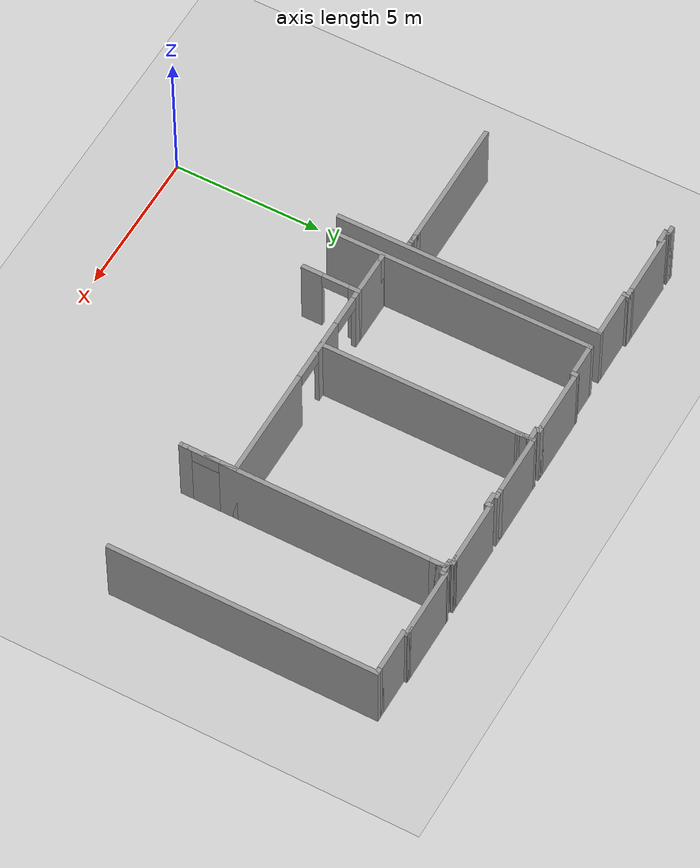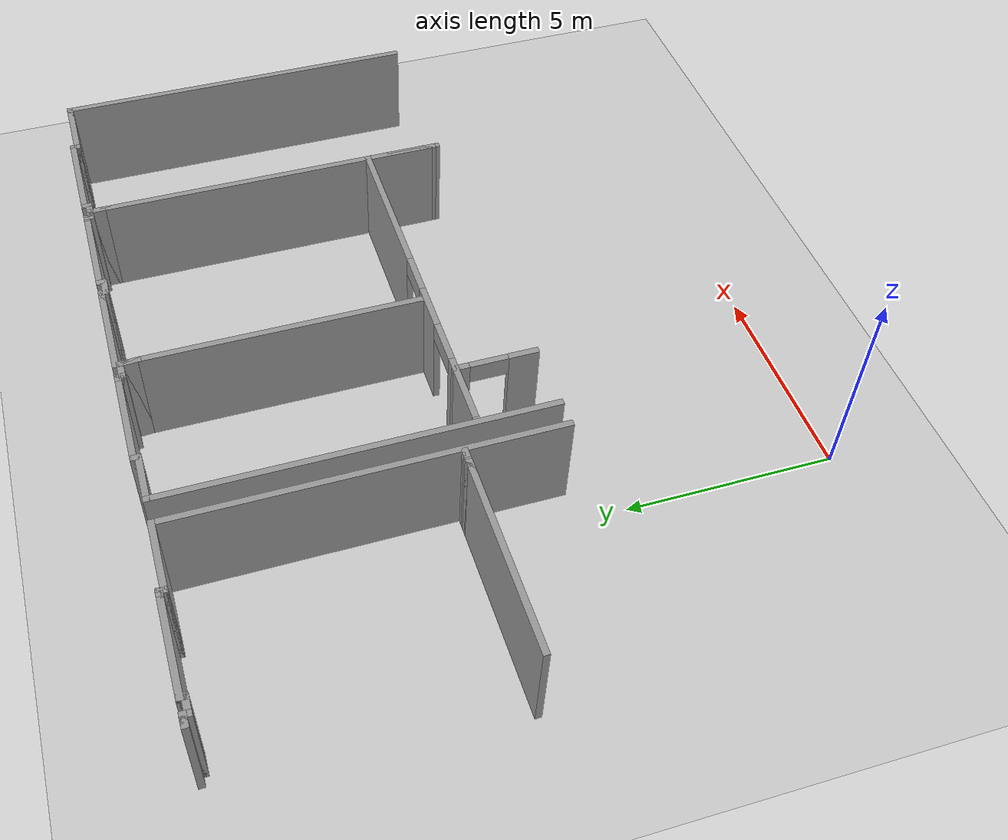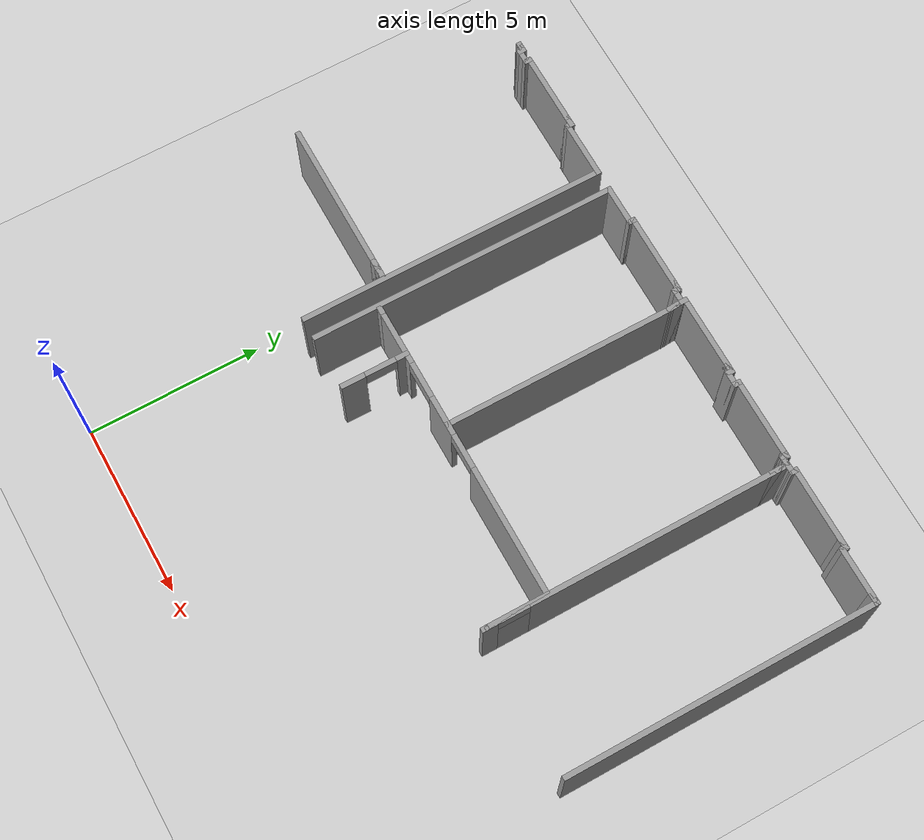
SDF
<sdf version="1.6">
 <world name="default">
  <model name="ground_plane">
   <static>1</static>
   <link name="link">
    <collision name="collision">
     <geometry><plane><normal>0 0 1</normal><size>100 100</size></plane></geometry>
     <surface><friction><ode><mu>100</mu><mu2>50</mu2></ode></friction></surface>
    </collision>
    <visual name="visual">
     <cast_shadows>0</cast_shadows>
     <geometry><plane><normal>0 0 1</normal><size>100 100</size></plane></geometry>
     <material>
      <script><uri>file://media/materials/scripts/gazebo.material</uri><name>Gazebo/Grey</name></script>
     </material>
    </visual>
   </link>
  </model>
  <model name="office_full">
   <pose>-5.89703 3.34021 0 0 -0 0</pose>
   <link name="Wall_329">
    <collision name="Wall_329_Collision">
     <geometry><box><size>0.25 0.15 2.5</size></box></geometry>
     <pose>0 0 1.25 0 -0 0</pose>
    </collision>
    <visual name="Wall_329_Visual">
     <pose>0 0 1.25 0 -0 0</pose>
     <geometry><box><size>0.25 0.15 2.5</size></box></geometry>
     <material>
      <script><uri>file://media/materials/scripts/gazebo.material</uri><name>Gazebo/Grey</name></script>
      <ambient>1 1 1 1</ambient>
     </material>
    </visual>
    <pose>2.35798 11.8397 0 0 -0 0</pose>
   </link>
   <link name="Wall_330">
    <collision name="Wall_330_Collision">
     <geometry><box><size>0.25 0.15 2.5</size></box></geometry>
     <pose>0 0 1.25 0 -0 0</pose>
    </collision>
    <visual name="Wall_330_Visual">
     <pose>0 0 1.25 0 -0 0</pose>
     <geometry><box><size>0.25 0.15 2.5</size></box></geometry>
     <material>
      <script><uri>file://media/materials/scripts/gazebo.material</uri><name>Gazebo/Grey</name></script>
      <ambient>1 1 1 1</ambient>
     </material>
    </visual>
    <pose>2.45798 11.8397 0 0 -0 0</pose>
   </link>
   <link name="Wall_331">
    <collision name="Wall_331_Collision">
     <geometry><box><size>0.25 0.15 2.5</size></box></geometry>
     <pose>0 0 1.25 0 -0 0</pose>
    </collision>
    <visual name="Wall_331_Visual">
     <pose>0 0 1.25 0 -0 0</pose>
     <geometry><box><size>0.25 0.15 2.5</size></box></geometry>
     <material>
      <script><uri>file://media/materials/scripts/gazebo.material</uri><name>Gazebo/Grey</name></script>
      <ambient>1 1 1 1</ambient>
     </material>
    </visual>
    <pose>2.50798 11.7897 0 0 0 -1.5708</pose>
   </link>
   <link name="Wall_332">
    <collision name="Wall_332_Collision">
     <geometry><box><size>0.5 0.15 2.5</size></box></geometry>
     <pose>0 0 1.25 0 -0 0</pose>
    </collision>
    <visual name="Wall_332_Visual">
     <pose>0 0 1.25 0 -0 0</pose>
     <geometry><box><size>0.5 0.15 2.5</size></box></geometry>
     <material>
      <script><uri>file://media/materials/scripts/gazebo.material</uri><name>Gazebo/Grey</name></script>
      <ambient>1 1 1 1</ambient>
     </material>
    </visual>
    <pose>2.68298 11.7397 0 0 -0 0</pose>
   </link>
   <link name="Wall_333">
    <collision name="Wall_333_Collision">
     <geometry><box><size>0.25 0.15 2.5</size></box></geometry>
     <pose>0 0 1.25 0 -0 0</pose>
    </collision>
    <visual name="Wall_333_Visual">
     <pose>0 0 1.25 0 -0 0</pose>
     <geometry><box><size>0.25 0.15 2.5</size></box></geometry>
     <material>
      <script><uri>file://media/materials/scripts/gazebo.material</uri><name>Gazebo/Grey</name></script>
      <ambient>1 1 1 1</ambient>
     </material>
    </visual>
    <pose>2.85798 11.7897 0 0 -0 1.5708</pose>
   </link>
   <link name="Wall_334">
    <collision name="Wall_334_Collision">
     <geometry><box><size>2.25 0.15 2.5</size></box></geometry>
     <pose>0 0 1.25 0 -0 0</pose>
    </collision>
    <visual name="Wall_334_Visual">
     <pose>0 0 1.25 0 -0 0</pose>
     <geometry><box><size>2.25 0.15 2.5</size></box></geometry>
     <material>
      <script><uri>file://media/materials/scripts/gazebo.material</uri><name>Gazebo/Grey</name></script>
      <ambient>1 1 1 1</ambient>
     </material>
    </visual>
    <pose>3.90798 11.8397 0 0 -0 0</pose>
   </link>
   <link name="Wall_335">
    <collision name="Wall_335_Collision">
     <geometry><box><size>0.25 0.15 2.5</size></box></geometry>
     <pose>0 0 1.25 0 -0 0</pose>
    </collision>
    <visual name="Wall_335_Visual">
     <pose>0 0 1.25 0 -0 0</pose>
     <geometry><box><size>0.25 0.15 2.5</size></box></geometry>
     <material>
      <script><uri>file://media/materials/scripts/gazebo.material</uri><name>Gazebo/Grey</name></script>
      <ambient>1 1 1 1</ambient>
     </material>
    </visual>
    <pose>5.00798 11.8397 0 0 -0 0</pose>
   </link>
   <link name="Wall_338">
    <collision name="Wall_338_Collision">
     <geometry><box><size>0.25 0.15 2.5</size></box></geometry>
     <pose>0 0 1.25 0 -0 0</pose>
    </collision>
    <visual name="Wall_338_Visual">
     <pose>0 0 1.25 0 -0 0</pose>
     <geometry><box><size>0.25 0.15 2.5</size></box></geometry>
     <material>
      <script><uri>file://media/materials/scripts/gazebo.material</uri><name>Gazebo/Grey</name></script>
      <ambient>1 1 1 1</ambient>
     </material>
    </visual>
    <pose>5.00798 11.8397 0 0 -0 0</pose>
   </link>
   <link name="Wall_339">
    <collision name="Wall_339_Collision">
     <geometry><box><size>0.25 0.15 2.5</size></box></geometry>
     <pose>0 0 1.25 0 -0 0</pose>
    </collision>
    <visual name="Wall_339_Visual">
     <pose>0 0 1.25 0 -0 0</pose>
     <geometry><box><size>0.25 0.15 2.5</size></box></geometry>
     <material>
      <script><uri>file://media/materials/scripts/gazebo.material</uri><name>Gazebo/Grey</name></script>
      <ambient>1 1 1 1</ambient>
     </material>
    </visual>
    <pose>5.10798 11.8397 0 0 -0 0</pose>
   </link>
   <link name="Wall_340">
    <collision name="Wall_340_Collision">
     <geometry><box><size>0.25 0.15 2.5</size></box></geometry>
     <pose>0 0 1.25 0 -0 0</pose>
    </collision>
    <visual name="Wall_340_Visual">
     <pose>0 0 1.25 0 -0 0</pose>
     <geometry><box><size>0.25 0.15 2.5</size></box></geometry>
     <material>
      <script><uri>file://media/materials/scripts/gazebo.material</uri><name>Gazebo/Grey</name></script>
      <ambient>1 1 1 1</ambient>
     </material>
    </visual>
    <pose>5.15798 11.7897 0 0 0 -1.5708</pose>
   </link>
   <link name="Wall_341">
    <collision name="Wall_341_Collision">
     <geometry><box><size>1.75 0.15 2.5</size></box></geometry>
     <pose>0 0 1.25 0 -0 0</pose>
    </collision>
    <visual name="Wall_341_Visual">
     <pose>0 0 1.25 0 -0 0</pose>
     <geometry><box><size>1.75 0.15 2.5</size></box></geometry>
     <material>
      <script><uri>file://media/materials/scripts/gazebo.material</uri><name>Gazebo/Grey</name></script>
      <ambient>1 1 1 1</ambient>
     </material>
    </visual>
    <pose>5.95798 11.7397 0 0 -0 0</pose>
   </link>
   <link name="Wall_342">
    <collision name="Wall_342_Collision">
     <geometry><box><size>9 0.15 2.5</size></box></geometry>
     <pose>0 0 1.25 0 -0 0</pose>
    </collision>
    <visual name="Wall_342_Visual">
     <pose>0 0 1.25 0 -0 0</pose>
     <geometry><box><size>9 0.15 2.5</size></box></geometry>
     <material>
      <script><uri>file://media/materials/scripts/gazebo.material</uri><name>Gazebo/Grey</name></script>
      <ambient>1 1 1 1</ambient>
     </material>
    </visual>
    <pose>6.75798 7.31471 0 0 0 -1.5708</pose>
   </link>
   <link name="Wall_389">
    <collision name="Wall_389_Collision">
     <geometry><box><size>4.5 0.15 2.5</size></box></geometry>
     <pose>0 0 1.25 0 -0 0</pose>
    </collision>
    <visual name="Wall_389_Visual">
     <pose>0 0 1.25 0 -0 0</pose>
     <geometry><box><size>4.5 0.15 2.5</size></box></geometry>
     <material>
      <script><uri>file://media/materials/scripts/gazebo.material</uri><name>Gazebo/Grey</name></script>
      <ambient>1 1 1 1</ambient>
     </material>
    </visual>
    <pose>4.02068 5.23121 0 0 -0 0</pose>
   </link>
   <link name="Wall_390">
    <collision name="Wall_390_Collision">
     <geometry><box><size>0.25 0.15 2.5</size></box></geometry>
     <pose>0 0 1.25 0 -0 0</pose>
    </collision>
    <visual name="Wall_390_Visual">
     <pose>0 0 1.25 0 -0 0</pose>
     <geometry><box><size>0.25 0.15 2.5</size></box></geometry>
     <material>
      <script><uri>file://media/materials/scripts/gazebo.material</uri><name>Gazebo/Grey</name></script>
      <ambient>1 1 1 1</ambient>
     </material>
    </visual>
    <pose>6.24568 5.23121 0 0 -0 0</pose>
   </link>
   <link name="Wall_391">
    <collision name="Wall_391_Collision">
     <geometry><box><size>0.25 0.15 2.5</size></box></geometry>
     <pose>0 0 1.25 0 -0 0</pose>
    </collision>
    <visual name="Wall_391_Visual">
     <pose>0 0 1.25 0 -0 0</pose>
     <geometry><box><size>0.25 0.15 2.5</size></box></geometry>
     <material>
      <script><uri>file://media/materials/scripts/gazebo.material</uri><name>Gazebo/Grey</name></script>
      <ambient>1 1 1 1</ambient>
     </material>
    </visual>
    <pose>6.34568 5.23121 0 0 -0 0</pose>
   </link>
   <link name="Wall_392">
    <collision name="Wall_392_Collision">
     <geometry><box><size>0.25 0.15 2.5</size></box></geometry>
     <pose>0 0 1.25 0 -0 0</pose>
    </collision>
    <visual name="Wall_392_Visual">
     <pose>0 0 1.25 0 -0 0</pose>
     <geometry><box><size>0.25 0.15 2.5</size></box></geometry>
     <material>
      <script><uri>file://media/materials/scripts/gazebo.material</uri><name>Gazebo/Grey</name></script>
      <ambient>1 1 1 1</ambient>
     </material>
    </visual>
    <pose>6.44568 5.23121 0 0 -0 0</pose>
   </link>
   <link name="Wall_393">
    <collision name="Wall_393_Collision">
     <geometry><box><size>0.25 0.15 2.5</size></box></geometry>
     <pose>0 0 1.25 0 -0 0</pose>
    </collision>
    <visual name="Wall_393_Visual">
     <pose>0 0 1.25 0 -0 0</pose>
     <geometry><box><size>0.25 0.15 2.5</size></box></geometry>
     <material>
      <script><uri>file://media/materials/scripts/gazebo.material</uri><name>Gazebo/Grey</name></script>
      <ambient>1 1 1 1</ambient>
     </material>
    </visual>
    <pose>6.54568 5.23121 0 0 -0 0</pose>
   </link>
   <link name="Wall_394">
    <collision name="Wall_394_Collision">
     <geometry><box><size>0.25 0.15 2.5</size></box></geometry>
     <pose>0 0 1.25 0 -0 0</pose>
    </collision>
    <visual name="Wall_394_Visual">
     <pose>0 0 1.25 0 -0 0</pose>
     <geometry><box><size>0.25 0.15 2.5</size></box></geometry>
     <material>
      <script><uri>file://media/materials/scripts/gazebo.material</uri><name>Gazebo/Grey</name></script>
      <ambient>1 1 1 1</ambient>
     </material>
    </visual>
    <pose>6.64568 5.23121 0 0 -0 0</pose>
   </link>
   <link name="Wall_401">
    <collision name="Wall_401_Collision">
     <geometry><box><size>9 0.15 2.5</size></box></geometry>
     <pose>0 0 1.25 0 -0 0</pose>
    </collision>
    <visual name="Wall_401_Visual">
     <pose>0 0 1.25 0 -0 0</pose>
     <geometry><box><size>9 0.15 2.5</size></box></geometry>
     <material>
      <script><uri>file://media/materials/scripts/gazebo.material</uri><name>Gazebo/Grey</name></script>
      <ambient>1 1 1 1</ambient>
     </material>
    </visual>
    <pose>7.35798 7.31471 0 0 -0 1.5708</pose>
   </link>
   <link name="Wall_402">
    <collision name="Wall_402_Collision">
     <geometry><box><size>1.25 0.15 2.5</size></box></geometry>
     <pose>0 0 1.25 0 -0 0</pose>
    </collision>
    <visual name="Wall_402_Visual">
     <pose>0 0 1.25 0 -0 0</pose>
     <geometry><box><size>1.25 0.15 2.5</size></box></geometry>
     <material>
      <script><uri>file://media/materials/scripts/gazebo.material</uri><name>Gazebo/Grey</name></script>
      <ambient>1 1 1 1</ambient>
     </material>
    </visual>
    <pose>7.90798 11.7397 0 0 -0 0</pose>
   </link>
   <link name="Wall_403">
    <collision name="Wall_403_Collision">
     <geometry><box><size>0.25 0.15 2.5</size></box></geometry>
     <pose>0 0 1.25 0 -0 0</pose>
    </collision>
    <visual name="Wall_403_Visual">
     <pose>0 0 1.25 0 -0 0</pose>
     <geometry><box><size>0.25 0.15 2.5</size></box></geometry>
     <material>
      <script><uri>file://media/materials/scripts/gazebo.material</uri><name>Gazebo/Grey</name></script>
      <ambient>1 1 1 1</ambient>
     </material>
    </visual>
    <pose>8.45798 11.7897 0 0 -0 1.5708</pose>
   </link>
   <link name="Wall_404">
    <collision name="Wall_404_Collision">
     <geometry><box><size>2.25 0.15 2.5</size></box></geometry>
     <pose>0 0 1.25 0 -0 0</pose>
    </collision>
    <visual name="Wall_404_Visual">
     <pose>0 0 1.25 0 -0 0</pose>
     <geometry><box><size>2.25 0.15 2.5</size></box></geometry>
     <material>
      <script><uri>file://media/materials/scripts/gazebo.material</uri><name>Gazebo/Grey</name></script>
      <ambient>1 1 1 1</ambient>
     </material>
    </visual>
    <pose>9.50798 11.8397 0 0 -0 0</pose>
   </link>
   <link name="Wall_405">
    <collision name="Wall_405_Collision">
     <geometry><box><size>0.25 0.15 2.5</size></box></geometry>
     <pose>0 0 1.25 0 -0 0</pose>
    </collision>
    <visual name="Wall_405_Visual">
     <pose>0 0 1.25 0 -0 0</pose>
     <geometry><box><size>0.25 0.15 2.5</size></box></geometry>
     <material>
      <script><uri>file://media/materials/scripts/gazebo.material</uri><name>Gazebo/Grey</name></script>
      <ambient>1 1 1 1</ambient>
     </material>
    </visual>
    <pose>10.608 11.8397 0 0 -0 0</pose>
   </link>
   <link name="Wall_406">
    <collision name="Wall_406_Collision">
     <geometry><box><size>0.25 0.15 2.5</size></box></geometry>
     <pose>0 0 1.25 0 -0 0</pose>
    </collision>
    <visual name="Wall_406_Visual">
     <pose>0 0 1.25 0 -0 0</pose>
     <geometry><box><size>0.25 0.15 2.5</size></box></geometry>
     <material>
      <script><uri>file://media/materials/scripts/gazebo.material</uri><name>Gazebo/Grey</name></script>
      <ambient>1 1 1 1</ambient>
     </material>
    </visual>
    <pose>10.708 11.8397 0 0 -0 0</pose>
   </link>
   <link name="Wall_407">
    <collision name="Wall_407_Collision">
     <geometry><box><size>0.25 0.15 2.5</size></box></geometry>
     <pose>0 0 1.25 0 -0 0</pose>
    </collision>
    <visual name="Wall_407_Visual">
     <pose>0 0 1.25 0 -0 0</pose>
     <geometry><box><size>0.25 0.15 2.5</size></box></geometry>
     <material>
      <script><uri>file://media/materials/scripts/gazebo.material</uri><name>Gazebo/Grey</name></script>
      <ambient>1 1 1 1</ambient>
     </material>
    </visual>
    <pose>10.758 11.7897 0 0 0 -1.5708</pose>
   </link>
   <link name="Wall_411">
    <collision name="Wall_411_Collision">
     <geometry><box><size>0.25 0.15 2.5</size></box></geometry>
     <pose>0 0 1.25 0 -0 0</pose>
    </collision>
    <visual name="Wall_411_Visual">
     <pose>0 0 1.25 0 -0 0</pose>
     <geometry><box><size>0.25 0.15 2.5</size></box></geometry>
     <material>
      <script><uri>file://media/materials/scripts/gazebo.material</uri><name>Gazebo/Grey</name></script>
      <ambient>1 1 1 1</ambient>
     </material>
    </visual>
    <pose>13.258 11.8397 0 0 -0 0</pose>
   </link>
   <link name="Wall_412">
    <collision name="Wall_412_Collision">
     <geometry><box><size>0.25 0.15 2.5</size></box></geometry>
     <pose>0 0 1.25 0 -0 0</pose>
    </collision>
    <visual name="Wall_412_Visual">
     <pose>0 0 1.25 0 -0 0</pose>
     <geometry><box><size>0.25 0.15 2.5</size></box></geometry>
     <material>
      <script><uri>file://media/materials/scripts/gazebo.material</uri><name>Gazebo/Grey</name></script>
      <ambient>1 1 1 1</ambient>
     </material>
    </visual>
    <pose>13.358 11.8397 0 0 -0 0</pose>
   </link>
   <link name="Wall_413">
    <collision name="Wall_413_Collision">
     <geometry><box><size>0.25 0.15 2.5</size></box></geometry>
     <pose>0 0 1.25 0 -0 0</pose>
    </collision>
    <visual name="Wall_413_Visual">
     <pose>0 0 1.25 0 -0 0</pose>
     <geometry><box><size>0.25 0.15 2.5</size></box></geometry>
     <material>
      <script><uri>file://media/materials/scripts/gazebo.material</uri><name>Gazebo/Grey</name></script>
      <ambient>1 1 1 1</ambient>
     </material>
    </visual>
    <pose>13.408 11.7897 0 0 0 -1.5708</pose>
   </link>
   <link name="Wall_414">
    <collision name="Wall_414_Collision">
     <geometry><box><size>0.5 0.15 2.5</size></box></geometry>
     <pose>0 0 1.25 0 -0 0</pose>
    </collision>
    <visual name="Wall_414_Visual">
     <pose>0 0 1.25 0 -0 0</pose>
     <geometry><box><size>0.5 0.15 2.5</size></box></geometry>
     <material>
      <script><uri>file://media/materials/scripts/gazebo.material</uri><name>Gazebo/Grey</name></script>
      <ambient>1 1 1 1</ambient>
     </material>
    </visual>
    <pose>13.583 11.7397 0 0 -0 0</pose>
   </link>
   <link name="Wall_415">
    <collision name="Wall_415_Collision">
     <geometry><box><size>0.25 0.15 2.5</size></box></geometry>
     <pose>0 0 1.25 0 -0 0</pose>
    </collision>
    <visual name="Wall_415_Visual">
     <pose>0 0 1.25 0 -0 0</pose>
     <geometry><box><size>0.25 0.15 2.5</size></box></geometry>
     <material>
      <script><uri>file://media/materials/scripts/gazebo.material</uri><name>Gazebo/Grey</name></script>
      <ambient>1 1 1 1</ambient>
     </material>
    </visual>
    <pose>13.758 11.7897 0 0 -0 1.5708</pose>
   </link>
   <link name="Wall_416">
    <collision name="Wall_416_Collision">
     <geometry><box><size>2.25 0.15 2.5</size></box></geometry>
     <pose>0 0 1.25 0 -0 0</pose>
    </collision>
    <visual name="Wall_416_Visual">
     <pose>0 0 1.25 0 -0 0</pose>
     <geometry><box><size>2.25 0.15 2.5</size></box></geometry>
     <material>
      <script><uri>file://media/materials/scripts/gazebo.material</uri><name>Gazebo/Grey</name></script>
      <ambient>1 1 1 1</ambient>
     </material>
    </visual>
    <pose>14.808 11.8397 0 0 -0 0</pose>
   </link>
   <link name="Wall_417">
    <collision name="Wall_417_Collision">
     <geometry><box><size>0.25 0.15 2.5</size></box></geometry>
     <pose>0 0 1.25 0 -0 0</pose>
    </collision>
    <visual name="Wall_417_Visual">
     <pose>0 0 1.25 0 -0 0</pose>
     <geometry><box><size>0.25 0.15 2.5</size></box></geometry>
     <material>
      <script><uri>file://media/materials/scripts/gazebo.material</uri><name>Gazebo/Grey</name></script>
      <ambient>1 1 1 1</ambient>
     </material>
    </visual>
    <pose>15.908 11.8397 0 0 -0 0</pose>
   </link>
   <link name="Wall_418">
    <collision name="Wall_418_Collision">
     <geometry><box><size>0.25 0.15 2.5</size></box></geometry>
     <pose>0 0 1.25 0 -0 0</pose>
    </collision>
    <visual name="Wall_418_Visual">
     <pose>0 0 1.25 0 -0 0</pose>
     <geometry><box><size>0.25 0.15 2.5</size></box></geometry>
     <material>
      <script><uri>file://media/materials/scripts/gazebo.material</uri><name>Gazebo/Grey</name></script>
      <ambient>1 1 1 1</ambient>
     </material>
    </visual>
    <pose>16.008 11.8397 0 0 -0 0</pose>
   </link>
   <link name="Wall_419">
    <collision name="Wall_419_Collision">
     <geometry><box><size>0.25 0.15 2.5</size></box></geometry>
     <pose>0 0 1.25 0 -0 0</pose>
    </collision>
    <visual name="Wall_419_Visual">
     <pose>0 0 1.25 0 -0 0</pose>
     <geometry><box><size>0.25 0.15 2.5</size></box></geometry>
     <material>
      <script><uri>file://media/materials/scripts/gazebo.material</uri><name>Gazebo/Grey</name></script>
      <ambient>1 1 1 1</ambient>
     </material>
    </visual>
    <pose>16.0568 11.7897 0 0 0 -1.59537</pose>
   </link>
   <link name="Wall_424">
    <collision name="Wall_424_Collision">
     <geometry><box><size>0.25 0.15 2.5</size></box></geometry>
     <pose>0 0 1.25 0 -0 0</pose>
    </collision>
    <visual name="Wall_424_Visual">
     <pose>0 0 1.25 0 -0 0</pose>
     <geometry><box><size>0.25 0.15 2.5</size></box></geometry>
     <material>
      <script><uri>file://media/materials/scripts/gazebo.material</uri><name>Gazebo/Grey</name></script>
      <ambient>1 1 1 1</ambient>
     </material>
    </visual>
    <pose>18.658 11.8397 0 0 -0 0</pose>
   </link>
   <link name="Wall_427">
    <collision name="Wall_427_Collision">
     <geometry><box><size>0.25 0.15 2.5</size></box></geometry>
     <pose>0 0 1.25 0 -0 0</pose>
    </collision>
    <visual name="Wall_427_Visual">
     <pose>0 0 1.25 0 -0 0</pose>
     <geometry><box><size>0.25 0.15 2.5</size></box></geometry>
     <material>
      <script><uri>file://media/materials/scripts/gazebo.material</uri><name>Gazebo/Grey</name></script>
      <ambient>1 1 1 1</ambient>
     </material>
    </visual>
    <pose>18.658 11.8397 0 0 -0 0</pose>
   </link>
   <link name="Wall_428">
    <collision name="Wall_428_Collision">
     <geometry><box><size>0.25 0.15 2.5</size></box></geometry>
     <pose>0 0 1.25 0 -0 0</pose>
    </collision>
    <visual name="Wall_428_Visual">
     <pose>0 0 1.25 0 -0 0</pose>
     <geometry><box><size>0.25 0.15 2.5</size></box></geometry>
     <material>
      <script><uri>file://media/materials/scripts/gazebo.material</uri><name>Gazebo/Grey</name></script>
      <ambient>1 1 1 1</ambient>
     </material>
    </visual>
    <pose>18.758 11.8397 0 0 -0 0</pose>
   </link>
   <link name="Wall_429">
    <collision name="Wall_429_Collision">
     <geometry><box><size>0.25 0.15 2.5</size></box></geometry>
     <pose>0 0 1.25 0 -0 0</pose>
    </collision>
    <visual name="Wall_429_Visual">
     <pose>0 0 1.25 0 -0 0</pose>
     <geometry><box><size>0.25 0.15 2.5</size></box></geometry>
     <material>
      <script><uri>file://media/materials/scripts/gazebo.material</uri><name>Gazebo/Grey</name></script>
      <ambient>1 1 1 1</ambient>
     </material>
    </visual>
    <pose>18.808 11.7897 0 0 0 -1.5708</pose>
   </link>
   <link name="Wall_430">
    <collision name="Wall_430_Collision">
     <geometry><box><size>1.5 0.15 2.5</size></box></geometry>
     <pose>0 0 1.25 0 -0 0</pose>
    </collision>
    <visual name="Wall_430_Visual">
     <pose>0 0 1.25 0 -0 0</pose>
     <geometry><box><size>1.5 0.15 2.5</size></box></geometry>
     <material>
      <script><uri>file://media/materials/scripts/gazebo.material</uri><name>Gazebo/Grey</name></script>
      <ambient>1 1 1 1</ambient>
     </material>
    </visual>
    <pose>19.483 11.7397 0 0 -0 0</pose>
   </link>
   <link name="Wall_431">
    <collision name="Wall_431_Collision">
     <geometry><box><size>0.25 0.15 2.5</size></box></geometry>
     <pose>0 0 1.25 0 -0 0</pose>
    </collision>
    <visual name="Wall_431_Visual">
     <pose>0 0 1.25 0 -0 0</pose>
     <geometry><box><size>0.25 0.15 2.5</size></box></geometry>
     <material>
      <script><uri>file://media/materials/scripts/gazebo.material</uri><name>Gazebo/Grey</name></script>
      <ambient>1 1 1 1</ambient>
     </material>
    </visual>
    <pose>20.208 11.7397 0 0 -0 0</pose>
   </link>
   <link name="Wall_432">
    <collision name="Wall_432_Collision">
     <geometry><box><size>0.25 0.15 2.5</size></box></geometry>
     <pose>0 0 1.25 0 -0 0</pose>
    </collision>
    <visual name="Wall_432_Visual">
     <pose>0 0 1.25 0 -0 0</pose>
     <geometry><box><size>0.25 0.15 2.5</size></box></geometry>
     <material>
      <script><uri>file://media/materials/scripts/gazebo.material</uri><name>Gazebo/Grey</name></script>
      <ambient>1 1 1 1</ambient>
     </material>
    </visual>
    <pose>20.308 11.7397 0 0 -0 0</pose>
   </link>
   <link name="Wall_433">
    <collision name="Wall_433_Collision">
     <geometry><box><size>9 0.15 2.5</size></box></geometry>
     <pose>0 0 1.25 0 -0 0</pose>
    </collision>
    <visual name="Wall_433_Visual">
     <pose>0 0 1.25 0 -0 0</pose>
     <geometry><box><size>9 0.15 2.5</size></box></geometry>
     <material>
      <script><uri>file://media/materials/scripts/gazebo.material</uri><name>Gazebo/Grey</name></script>
      <ambient>1 1 1 1</ambient>
     </material>
    </visual>
    <pose>20.358 7.31471 0 0 0 -1.5708</pose>
   </link>
   <link name="Wall_458">
    <pose>8.90798 3.81471 0 0 -0 1.5708</pose>
    <visual name="Wall_458_Visual_0">
     <pose>-0.644234 0 1.25 0 -0 0</pose>
     <geometry><box><size>0.711531 0.15 2.5</size></box></geometry>
     <material>
      <script><uri>file://media/materials/scripts/gazebo.material</uri><name>Gazebo/Grey</name></script>
      <ambient>1 1 1 1</ambient>
     </material>
    </visual>
    <collision name="Wall_458_Collision_0">
     <geometry><box><size>0.711531 0.15 2.5</size></box></geometry>
     <pose>-0.644234 0 1.25 0 -0 0</pose>
    </collision>
    <visual name="Wall_458_Visual_1">
     <pose>0.805766 0 1.25 0 -0 0</pose>
     <geometry><box><size>0.388469 0.15 2.5</size></box></geometry>
     <material>
      <script><uri>file://media/materials/scripts/gazebo.material</uri><name>Gazebo/Grey</name></script>
      <ambient>1 1 1 1</ambient>
     </material>
    </visual>
    <collision name="Wall_458_Collision_1">
     <geometry><box><size>0.388469 0.15 2.5</size></box></geometry>
     <pose>0.805766 0 1.25 0 -0 0</pose>
    </collision>
    <visual name="Wall_458_Visual_2">
     <pose>0.161531 0 2.25 0 -0 0</pose>
     <geometry><box><size>0.9 0.15 0.5</size></box></geometry>
     <material>
      <script><uri>file://media/materials/scripts/gazebo.material</uri><name>Gazebo/Grey</name></script>
      <ambient>1 1 1 1</ambient>
     </material>
    </visual>
    <collision name="Wall_458_Collision_2">
     <geometry><box><size>0.9 0.15 0.5</size></box></geometry>
     <pose>0.161531 0 2.25 0 -0 0</pose>
    </collision>
   </link>
   <link name="Wall_459">
    <collision name="Wall_459_Collision">
     <geometry><box><size>1.5 0.15 2.5</size></box></geometry>
     <pose>0 0 1.25 0 -0 0</pose>
    </collision>
    <visual name="Wall_459_Visual">
     <pose>0 0 1.25 0 -0 0</pose>
     <geometry><box><size>1.5 0.15 2.5</size></box></geometry>
     <material>
      <script><uri>file://media/materials/scripts/gazebo.material</uri><name>Gazebo/Grey</name></script>
      <ambient>1 1 1 1</ambient>
     </material>
    </visual>
    <pose>8.23298 4.73971 0 0 -0 3.14159</pose>
   </link>
   <link name="Wall_460">
    <collision name="Wall_460_Collision">
     <geometry><box><size>0.25 0.15 2.5</size></box></geometry>
     <pose>0 0 1.25 0 -0 0</pose>
    </collision>
    <visual name="Wall_460_Visual">
     <pose>0 0 1.25 0 -0 0</pose>
     <geometry><box><size>0.25 0.15 2.5</size></box></geometry>
     <material>
      <script><uri>file://media/materials/scripts/gazebo.material</uri><name>Gazebo/Grey</name></script>
      <ambient>1 1 1 1</ambient>
     </material>
    </visual>
    <pose>7.50798 4.73971 0 0 -0 3.14159</pose>
   </link>
   <link name="Wall_465">
    <pose>12.583 4.73971 0 0 -0 0</pose>
    <visual name="Wall_465_Visual_0">
     <pose>-3.56496 0 1.25 0 -0 0</pose>
     <geometry><box><size>0.370079 0.15 2.5</size></box></geometry>
     <material>
      <script><uri>file://media/materials/scripts/gazebo.material</uri><name>Gazebo/Grey</name></script>
      <ambient>1 1 1 1</ambient>
     </material>
    </visual>
    <collision name="Wall_465_Collision_0">
     <geometry><box><size>0.370079 0.15 2.5</size></box></geometry>
     <pose>-3.56496 0 1.25 0 -0 0</pose>
    </collision>
    <visual name="Wall_465_Visual_1">
     <pose>-1.72009 0 1.25 0 -0 0</pose>
     <geometry><box><size>1.17775 0.15 2.5</size></box></geometry>
     <material>
      <script><uri>file://media/materials/scripts/gazebo.material</uri><name>Gazebo/Grey</name></script>
      <ambient>1 1 1 1</ambient>
     </material>
    </visual>
    <collision name="Wall_465_Collision_1">
     <geometry><box><size>1.17775 0.15 2.5</size></box></geometry>
     <pose>-1.72009 0 1.25 0 -0 0</pose>
    </collision>
    <visual name="Wall_465_Visual_2">
     <pose>1.81857 0 1.25 0 -0 0</pose>
     <geometry><box><size>3.86286 0.15 2.5</size></box></geometry>
     <material>
      <script><uri>file://media/materials/scripts/gazebo.material</uri><name>Gazebo/Grey</name></script>
      <ambient>1 1 1 1</ambient>
     </material>
    </visual>
    <collision name="Wall_465_Collision_2">
     <geometry><box><size>3.86286 0.15 2.5</size></box></geometry>
     <pose>1.81857 0 1.25 0 -0 0</pose>
    </collision>
    <visual name="Wall_465_Visual_3">
     <pose>-2.84444 0 2.25 0 -0 0</pose>
     <geometry><box><size>1.07095 0.15 0.5</size></box></geometry>
     <material>
      <script><uri>file://media/materials/scripts/gazebo.material</uri><name>Gazebo/Grey</name></script>
      <ambient>1 1 1 1</ambient>
     </material>
    </visual>
    <collision name="Wall_465_Collision_3">
     <geometry><box><size>1.07095 0.15 0.5</size></box></geometry>
     <pose>-2.84444 0 2.25 0 -0 0</pose>
    </collision>
    <visual name="Wall_465_Visual_4">
     <pose>-0.62204 0 2.25 0 -0 0</pose>
     <geometry><box><size>1.01835 0.15 0.5</size></box></geometry>
     <material>
      <script><uri>file://media/materials/scripts/gazebo.material</uri><name>Gazebo/Grey</name></script>
      <ambient>1 1 1 1</ambient>
     </material>
    </visual>
    <collision name="Wall_465_Collision_4">
     <geometry><box><size>1.01835 0.15 0.5</size></box></geometry>
     <pose>-0.62204 0 2.25 0 -0 0</pose>
    </collision>
   </link>
   <link name="Wall_466">
    <collision name="Wall_466_Collision">
     <geometry><box><size>1.75 0.15 2.5</size></box></geometry>
     <pose>0 0 1.25 0 -0 0</pose>
    </collision>
    <visual name="Wall_466_Visual">
     <pose>0 0 1.25 0 -0 0</pose>
     <geometry><box><size>1.75 0.15 2.5</size></box></geometry>
     <material>
      <script><uri>file://media/materials/scripts/gazebo.material</uri><name>Gazebo/Grey</name></script>
      <ambient>1 1 1 1</ambient>
     </material>
    </visual>
    <pose>16.258 3.93971 0 0 0 -1.5708</pose>
   </link>
   <link name="Wall_467">
    <collision name="Wall_467_Collision">
     <geometry><box><size>0.25 0.15 2.5</size></box></geometry>
     <pose>0 0 1.25 0 -0 0</pose>
    </collision>
    <visual name="Wall_467_Visual">
     <pose>0 0 1.25 0 -0 0</pose>
     <geometry><box><size>0.25 0.15 2.5</size></box></geometry>
     <material>
      <script><uri>file://media/materials/scripts/gazebo.material</uri><name>Gazebo/Grey</name></script>
      <ambient>1 1 1 1</ambient>
     </material>
    </visual>
    <pose>16.258 3.08971 0 0 0 -1.5708</pose>
   </link>
   <link name="Wall_469">
    <pose>16.258 7.11471 0 0 -0 1.5708</pose>
    <visual name="Wall_469_Visual_0">
     <pose>-4.0295 0 1.25 0 -0 0</pose>
     <geometry><box><size>0.441005 0.15 2.5</size></box></geometry>
     <material>
      <script><uri>file://media/materials/scripts/gazebo.material</uri><name>Gazebo/Grey</name></script>
      <ambient>1 1 1 1</ambient>
     </material>
    </visual>
    <collision name="Wall_469_Collision_0">
     <geometry><box><size>0.441005 0.15 2.5</size></box></geometry>
     <pose>-4.0295 0 1.25 0 -0 0</pose>
    </collision>
    <visual name="Wall_469_Visual_1">
     <pose>0.678107 0 1.25 0 -0 0</pose>
     <geometry><box><size>7.14379 0.15 2.5</size></box></geometry>
     <material>
      <script><uri>file://media/materials/scripts/gazebo.material</uri><name>Gazebo/Grey</name></script>
      <ambient>1 1 1 1</ambient>
     </material>
    </visual>
    <collision name="Wall_469_Collision_1">
     <geometry><box><size>7.14379 0.15 2.5</size></box></geometry>
     <pose>0.678107 0 1.25 0 -0 0</pose>
    </collision>
    <visual name="Wall_469_Visual_2">
     <pose>-3.35139 0 2.25 0 -0 0</pose>
     <geometry><box><size>0.915209 0.15 0.5</size></box></geometry>
     <material>
      <script><uri>file://media/materials/scripts/gazebo.material</uri><name>Gazebo/Grey</name></script>
      <ambient>1 1 1 1</ambient>
     </material>
    </visual>
    <collision name="Wall_469_Collision_2">
     <geometry><box><size>0.915209 0.15 0.5</size></box></geometry>
     <pose>-3.35139 0 2.25 0 -0 0</pose>
    </collision>
   </link>
   <link name="Wall_472">
    <collision name="Wall_472_Collision">
     <geometry><box><size>0.25 0.15 2.5</size></box></geometry>
     <pose>0 0 1.25 0 -0 0</pose>
    </collision>
    <visual name="Wall_472_Visual">
     <pose>0 0 1.25 0 -0 0</pose>
     <geometry><box><size>0.25 0.15 2.5</size></box></geometry>
     <material>
      <script><uri>file://media/materials/scripts/gazebo.material</uri><name>Gazebo/Grey</name></script>
      <ambient>1 1 1 1</ambient>
     </material>
    </visual>
    <pose>16.058 11.7897 0 0 0 -1.5708</pose>
   </link>
   <link name="Wall_474">
    <collision name="Wall_474_Collision">
     <geometry><box><size>0.25 0.15 2.5</size></box></geometry>
     <pose>0 0 1.25 0 -0 0</pose>
    </collision>
    <visual name="Wall_474_Visual">
     <pose>0 0 1.25 0 -0 0</pose>
     <geometry><box><size>0.25 0.15 2.5</size></box></geometry>
     <material>
      <script><uri>file://media/materials/scripts/gazebo.material</uri><name>Gazebo/Grey</name></script>
      <ambient>1 1 1 1</ambient>
     </material>
    </visual>
    <pose>16.058 11.7897 0 0 0 -1.5708</pose>
   </link>
   <link name="Wall_475">
    <collision name="Wall_475_Collision">
     <geometry><box><size>0.25 0.15 2.5</size></box></geometry>
     <pose>0 0 1.25 0 -0 0</pose>
    </collision>
    <visual name="Wall_475_Visual">
     <pose>0 0 1.25 0 -0 0</pose>
     <geometry><box><size>0.25 0.15 2.5</size></box></geometry>
     <material>
      <script><uri>file://media/materials/scripts/gazebo.material</uri><name>Gazebo/Grey</name></script>
      <ambient>1 1 1 1</ambient>
     </material>
    </visual>
    <pose>16.108 11.7397 0 0 -0 0</pose>
   </link>
   <link name="Wall_476">
    <collision name="Wall_476_Collision">
     <geometry><box><size>0.25 0.15 2.5</size></box></geometry>
     <pose>0 0 1.25 0 -0 0</pose>
    </collision>
    <visual name="Wall_476_Visual">
     <pose>0 0 1.25 0 -0 0</pose>
     <geometry><box><size>0.25 0.15 2.5</size></box></geometry>
     <material>
      <script><uri>file://media/materials/scripts/gazebo.material</uri><name>Gazebo/Grey</name></script>
      <ambient>1 1 1 1</ambient>
     </material>
    </visual>
    <pose>16.208 11.7397 0 0 -0 0</pose>
   </link>
   <link name="Wall_477">
    <collision name="Wall_477_Collision">
     <geometry><box><size>0.6 0.15 2.5</size></box></geometry>
     <pose>0 0 1.25 0 -0 0</pose>
    </collision>
    <visual name="Wall_477_Visual">
     <pose>0 0 1.25 0 -0 0</pose>
     <geometry><box><size>0.6 0.15 2.5</size></box></geometry>
     <material>
      <script><uri>file://media/materials/scripts/gazebo.material</uri><name>Gazebo/Grey</name></script>
      <ambient>1 1 1 1</ambient>
     </material>
    </visual>
    <pose>16.258 11.5147 0 0 0 -1.5708</pose>
   </link>
   <link name="Wall_478">
    <collision name="Wall_478_Collision">
     <geometry><box><size>0.6 0.15 2.5</size></box></geometry>
     <pose>0 0 1.25 0 -0 0</pose>
    </collision>
    <visual name="Wall_478_Visual">
     <pose>0 0 1.25 0 -0 0</pose>
     <geometry><box><size>0.6 0.15 2.5</size></box></geometry>
     <material>
      <script><uri>file://media/materials/scripts/gazebo.material</uri><name>Gazebo/Grey</name></script>
      <ambient>1 1 1 1</ambient>
     </material>
    </visual>
    <pose>16.258 11.5147 0 0 -0 1.5708</pose>
   </link>
   <link name="Wall_479">
    <collision name="Wall_479_Collision">
     <geometry><box><size>0.25 0.15 2.5</size></box></geometry>
     <pose>0 0 1.25 0 -0 0</pose>
    </collision>
    <visual name="Wall_479_Visual">
     <pose>0 0 1.25 0 -0 0</pose>
     <geometry><box><size>0.25 0.15 2.5</size></box></geometry>
     <material>
      <script><uri>file://media/materials/scripts/gazebo.material</uri><name>Gazebo/Grey</name></script>
      <ambient>1 1 1 1</ambient>
     </material>
    </visual>
    <pose>16.308 11.7397 0 0 -0 0</pose>
   </link>
   <link name="Wall_480">
    <collision name="Wall_480_Collision">
     <geometry><box><size>0.27114 0.15 2.5</size></box></geometry>
     <pose>0 0 1.25 0 -0 0</pose>
    </collision>
    <visual name="Wall_480_Visual">
     <pose>0 0 1.25 0 -0 0</pose>
     <geometry><box><size>0.27114 0.15 2.5</size></box></geometry>
     <material>
      <script><uri>file://media/materials/scripts/gazebo.material</uri><name>Gazebo/Grey</name></script>
      <ambient>1 1 1 1</ambient>
     </material>
    </visual>
    <pose>16.4185 11.7405 0 0 -0 0.013417</pose>
   </link>
   <link name="Wall_481">
    <collision name="Wall_481_Collision">
     <geometry><box><size>0.25 0.15 2.5</size></box></geometry>
     <pose>0 0 1.25 0 -0 0</pose>
    </collision>
    <visual name="Wall_481_Visual">
     <pose>0 0 1.25 0 -0 0</pose>
     <geometry><box><size>0.25 0.15 2.5</size></box></geometry>
     <material>
      <script><uri>file://media/materials/scripts/gazebo.material</uri><name>Gazebo/Grey</name></script>
      <ambient>1 1 1 1</ambient>
     </material>
    </visual>
    <pose>16.4807 11.7913 0 0 -0 1.5708</pose>
   </link>
   <link name="Wall_483">
    <collision name="Wall_483_Collision">
     <geometry><box><size>0.25 0.15 2.5</size></box></geometry>
     <pose>0 0 1.25 0 -0 0</pose>
    </collision>
    <visual name="Wall_483_Visual">
     <pose>0 0 1.25 0 -0 0</pose>
     <geometry><box><size>0.25 0.15 2.5</size></box></geometry>
     <material>
      <script><uri>file://media/materials/scripts/gazebo.material</uri><name>Gazebo/Grey</name></script>
      <ambient>1 1 1 1</ambient>
     </material>
    </visual>
    <pose>16.4807 11.7913 0 0 -0 1.5708</pose>
   </link>
   <link name="Wall_484">
    <collision name="Wall_484_Collision">
     <geometry><box><size>2.37725 0.15 2.5</size></box></geometry>
     <pose>0 0 1.25 0 -0 0</pose>
    </collision>
    <visual name="Wall_484_Visual">
     <pose>0 0 1.25 0 -0 0</pose>
     <geometry><box><size>2.37725 0.15 2.5</size></box></geometry>
     <material>
      <script><uri>file://media/materials/scripts/gazebo.material</uri><name>Gazebo/Grey</name></script>
      <ambient>1 1 1 1</ambient>
     </material>
    </visual>
    <pose>17.5944 11.8405 0 0 0 -0.00073</pose>
   </link>
   <link name="Wall_486">
    <collision name="Wall_486_Collision">
     <geometry><box><size>6.75242 0.15 2.5</size></box></geometry>
     <pose>0 0 1.25 0 -0 0</pose>
    </collision>
    <visual name="Wall_486_Visual">
     <pose>0 0 1.25 0 -0 0</pose>
     <geometry><box><size>6.75242 0.15 2.5</size></box></geometry>
     <material>
      <script><uri>file://media/materials/scripts/gazebo.material</uri><name>Gazebo/Grey</name></script>
      <ambient>1 1 1 1</ambient>
     </material>
    </visual>
    <pose>11.136 8.04511 0 0 -0 1.57129</pose>
   </link>
   <link name="Wall_488">
    <collision name="Wall_488_Collision">
     <geometry><box><size>0.25 0.15 2.5</size></box></geometry>
     <pose>0 0 1.25 0 -0 0</pose>
    </collision>
    <visual name="Wall_488_Visual">
     <pose>0 0 1.25 0 -0 0</pose>
     <geometry><box><size>0.25 0.15 2.5</size></box></geometry>
     <material>
      <script><uri>file://media/materials/scripts/gazebo.material</uri><name>Gazebo/Grey</name></script>
      <ambient>1 1 1 1</ambient>
     </material>
    </visual>
    <pose>10.758 11.7897 0 0 0 -1.5708</pose>
   </link>
   <link name="Wall_496">
    <collision name="Wall_496_Collision">
     <geometry><box><size>0.25 0.15 2.5</size></box></geometry>
     <pose>0 0 1.25 0 -0 0</pose>
    </collision>
    <visual name="Wall_496_Visual">
     <pose>0 0 1.25 0 -0 0</pose>
     <geometry><box><size>0.25 0.15 2.5</size></box></geometry>
     <material>
      <script><uri>file://media/materials/scripts/gazebo.material</uri><name>Gazebo/Grey</name></script>
      <ambient>1 1 1 1</ambient>
     </material>
    </visual>
    <pose>10.758 11.7897 0 0 0 -1.5708</pose>
   </link>
   <link name="Wall_497">
    <collision name="Wall_497_Collision">
     <geometry><box><size>0.5 0.15 2.5</size></box></geometry>
     <pose>0 0 1.25 0 -0 0</pose>
    </collision>
    <visual name="Wall_497_Visual">
     <pose>0 0 1.25 0 -0 0</pose>
     <geometry><box><size>0.5 0.15 2.5</size></box></geometry>
     <material>
      <script><uri>file://media/materials/scripts/gazebo.material</uri><name>Gazebo/Grey</name></script>
      <ambient>1 1 1 1</ambient>
     </material>
    </visual>
    <pose>10.933 11.7397 0 0 -0 0</pose>
   </link>
   <link name="Wall_499">
    <collision name="Wall_499_Collision">
     <geometry><box><size>0.54241 0.15 2.5</size></box></geometry>
     <pose>0 0 1.25 0 -0 0</pose>
    </collision>
    <visual name="Wall_499_Visual">
     <pose>0 0 1.25 0 -0 0</pose>
     <geometry><box><size>0.54241 0.15 2.5</size></box></geometry>
     <material>
      <script><uri>file://media/materials/scripts/gazebo.material</uri><name>Gazebo/Grey</name></script>
      <ambient>1 1 1 1</ambient>
     </material>
    </visual>
    <pose>11.1212 11.5439 0 0 0 -1.50335</pose>
   </link>
   <link name="Wall_500">
    <collision name="Wall_500_Collision">
     <geometry><box><size>0.54241 0.15 2.5</size></box></geometry>
     <pose>0 0 1.25 0 -0 0</pose>
    </collision>
    <visual name="Wall_500_Visual">
     <pose>0 0 1.25 0 -0 0</pose>
     <geometry><box><size>0.54241 0.15 2.5</size></box></geometry>
     <material>
      <script><uri>file://media/materials/scripts/gazebo.material</uri><name>Gazebo/Grey</name></script>
      <ambient>1 1 1 1</ambient>
     </material>
    </visual>
    <pose>11.1212 11.5439 0 0 -0 1.63824</pose>
   </link>
   <link name="Wall_501">
    <collision name="Wall_501_Collision">
     <geometry><box><size>0.25 0.15 2.5</size></box></geometry>
     <pose>0 0 1.25 0 -0 0</pose>
    </collision>
    <visual name="Wall_501_Visual">
     <pose>0 0 1.25 0 -0 0</pose>
     <geometry><box><size>0.25 0.15 2.5</size></box></geometry>
     <material>
      <script><uri>file://media/materials/scripts/gazebo.material</uri><name>Gazebo/Grey</name></script>
      <ambient>1 1 1 1</ambient>
     </material>
    </visual>
    <pose>11.108 11.7897 0 0 -0 1.5708</pose>
   </link>
   <link name="Wall_502">
    <collision name="Wall_502_Collision">
     <geometry><box><size>2.35 0.15 2.5</size></box></geometry>
     <pose>0 0 1.25 0 -0 0</pose>
    </collision>
    <visual name="Wall_502_Visual">
     <pose>0 0 1.25 0 -0 0</pose>
     <geometry><box><size>2.35 0.15 2.5</size></box></geometry>
     <material>
      <script><uri>file://media/materials/scripts/gazebo.material</uri><name>Gazebo/Grey</name></script>
      <ambient>1 1 1 1</ambient>
     </material>
    </visual>
    <pose>12.208 11.8397 0 0 -0 0</pose>
   </link>
   <static>1</static>
  </model>
 </world>
</sdf>
